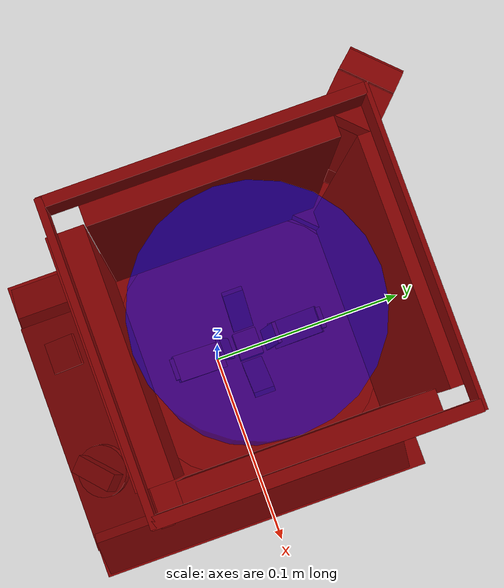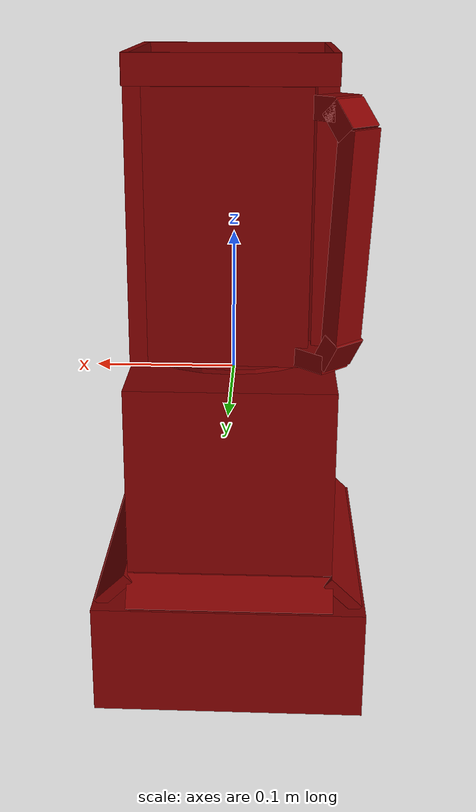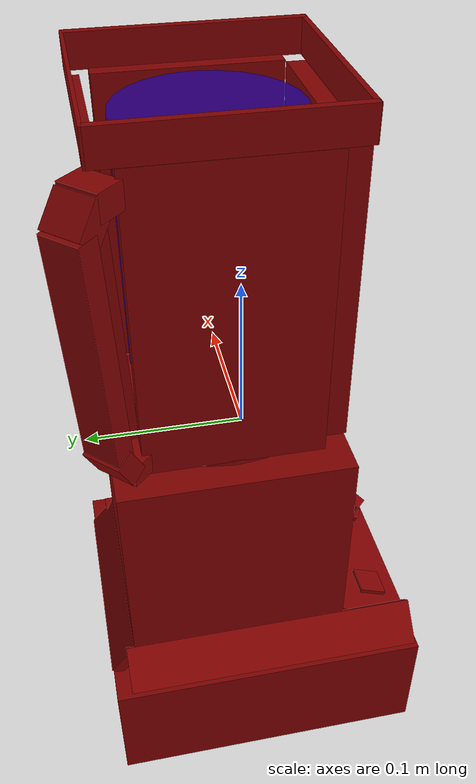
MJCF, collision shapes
<?xml version='1.0' encoding='UTF-8'?>
<mujoco model="model">
  <option timestep="0.002" gravity="0.0 0.0 -9.81"/>
  <compiler angle="radian"/>
  <asset>
    <mesh file="visuals/blade.obj" name="blade_vis"/>
    <mesh file="visuals/Body001.obj" name="Body001_vis"/>
    <mesh file="visuals/knob_speed.obj" name="knob_speed_vis"/>
    <mesh file="visuals/pitcher.obj" name="pitcher_vis"/>
    <mesh file="visuals/pitcher_main.obj" name="pitcher_main_vis"/>
    <mesh file="visuals/power_button.obj" name="power_button_vis"/>
    <texture file="visuals/T_BC001.png" name="Body001_material" type="2d"/>
    <material name="Body001_material" rgba="1 1 1 1.0" texture="Body001_material" shininess="0.7700482308864594" specular="0.9103448502657381"/>
    <texture file="visuals/T_BC001.png" name="knob_speed_material" type="2d"/>
    <material name="knob_speed_material" rgba="1 1 1 1.0" texture="knob_speed_material" shininess="0.7700482308864594" specular="0.9103448502657381"/>
    <texture file="visuals/T_BC001.png" name="pitcher_material" type="2d"/>
    <material name="pitcher_material" rgba="1 1 1 1.0" texture="pitcher_material" shininess="0.7700482308864594" specular="0.9103448502657381"/>
    <texture file="visuals/T_BC001.png" name="blade_material" type="2d"/>
    <material name="blade_material" rgba="1 1 1 1.0" texture="blade_material" shininess="0.7700482308864594" specular="2.3103448502657381"/>
    <texture file="visuals/T_BC001.png" name="pitcher_main_material" type="2d"/>
    <material name="pitcher_main_material" rgba="1 1 1 0.800000011920929" texture="pitcher_main_material" shininess="0.7700482308864594" specular="0.3103448502657381"/>
    <texture file="visuals/T_BC001.png" name="power_button_material" type="2d"/>
    <material name="power_button_material" rgba="1 1 1 1.0" texture="power_button_material" shininess="0.7700482308864594" specular="0.9103448502657381"/>
  </asset>
  <default>
    <default class="visual">
      <geom conaffinity="0" contype="0" group="1" type="mesh"/>
    </default>
    <default class="collision">
      <geom group="0" rgba="0.5 0 0 0.5" density="1000" solref="0.004 1" solimp="0.998 0.998 0.001"/>
    </default>
    <default class="spawn">
      <geom group="0" rgba="1 1 1 0.5" contype="0" conaffinity="0"/>
      <site group="0" rgba="1 1 1 0.5"/>
    </default>
    <default class="region">
      <geom group="1" conaffinity="0" contype="0" rgba="0 1 0 0" mass="0"/>
    </default>
  </default>
  <worldbody>
    <body>
      <body name="object">
        <geom mesh="Body001_vis" type="mesh" solimp="0.998 0.998 0.001" solref="0.001 1" friction="0.95 0.3 0.1" class="visual" material="Body001_material"/>
        <geom type="box" pos="0.00009838 -0.00092468 -0.18583005" size="0.09544695913791656 0.10426949709653854 0.0402303971350193" quat="1.0 0.0 0.0 0.0" class="collision"/>
        <geom type="box" pos="-0.00040561 0.01592932 -0.05616547" size="0.07126396149396896 0.07182466983795166 0.067325659096241" quat="1.0 0.0 0.0 0.0" class="collision"/>
        <geom type="box" pos="-0.07966139 -0.00496216 -0.13631720" size="0.00402027927339077 0.09815406799316406 0.014873117208480835" quat="0.9202430248260498 -2.683670368653561e-16 0.39134737849235535 5.258097957039354e-08" class="collision"/>
        <geom type="box" pos="0.08065451 -0.00496216 -0.13631720" size="0.00402027927339077 0.09815406799316406 0.014873117208480835" quat="0.9202430248260498 -3.5377271248647306e-15 -0.39134737849235535 -5.258097957039354e-08" class="collision"/>
        <geom type="box" pos="-0.00071108 0.09315052 -0.13622937" size="0.00402027927339077 0.07176673412322998 0.01249531377106905" quat="0.6628537774085999 0.24622128903865814 -0.24622133374214172 0.6628536581993103" class="collision"/>
        <geom type="box" pos="0.00512743 -0.07963913 -0.13734331" size="0.003384337294846773 0.07289834320545197 0.026366258040070534" quat="0.5791575908660889 -0.405680388212204 -0.40568044781684875 -0.5791574120521545" class="collision"/>
        <body name="knob_speed">
          <joint axis="0.0 0.3454406261444092 -0.9384405612945557" pos="0.03268874 -0.08703924 -0.12503923" limited="true" name="knob_speed_joint" range="0.0 4.71238898038469" type="hinge" damping="0.05" armature="0.001"/>
          <geom mesh="knob_speed_vis" type="mesh" solimp="0.998 0.998 0.001" solref="0.001 1" friction="0.95 0.3 0.1" class="visual" material="knob_speed_material"/>
          <geom type="cylinder" pos="0.03265166 -0.08532186 -0.12983802" size="0.01615726202726364 0.0025616271886974573" quat="0.9826064705848694 0.18524746596813202 0.004521556198596954 0.012144520878791809" class="collision"/>
          <geom class="collision" type="box" pos="0.03301833 -0.08862654 -0.12156287" size="0.013275418430566788 0.005633893422782421 0.006007363088428974" quat="0.9084489941596985 0.14288212358951569 -0.1322166621685028 0.3698970377445221" name="knob_speed_main"/>
        </body>
        <body name="pitcher">
          <geom mesh="pitcher_vis" type="mesh" solimp="0.998 0.998 0.001" solref="0.001 1" friction="0.95 0.3 0.1" class="visual" material="pitcher_material"/>
          <geom class="collision" type="box" pos="-0.07478996 0.09117244 0.11543127" size="0.011951700784265995 0.006453691981732845 0.06791377812623978" quat="0.9231506586074829 -0.029291750863194466 -0.012156728655099869 0.38312798738479614" name="pitcher_handle_1"/>
          <geom class="collision" type="box" pos="-0.06497423 0.08159496 0.19390878" size="0.011959709227085114 0.00865696556866169 0.007378702983260155" quat="0.9236152768135071 0.0 0.0 0.38332080841064453" name="pitcher_handle_2"/>
          <geom class="collision" type="box" pos="-0.05845841 0.07435066 0.03288266" size="0.012522098608314991 0.01429979968816042 0.006272301077842712" quat="0.9236152768135071 -2.5921023660835374e-10 6.245695627349335e-10 0.3833208382129669" name="pitcher_handle_0"/>
          <geom type="cylinder" pos="0.00034438 0.01651172 0.02433396" size="0.06772742420434952 0.0015224376693367958" quat="1.0 0.0 0.0 0.0" class="collision"/>
          <geom class="collision" type="box" pos="-0.07268012 0.08927961 0.18746170" size="0.011959709227085114 0.010367041453719139 0.00737870205193758" quat="0.8393899202346802 -0.38534361124038696 -0.15992611646652222 0.34836545586586" name="pitcher_handle_3"/>
          <geom class="collision" type="box" pos="-0.06991799 0.08577864 0.04140540" size="0.012522098608314991 0.010928334668278694 0.006272301077842712" quat="0.7978094816207886 0.4653656482696533 0.19313709437847137 0.33110862970352173" name="pitcher_handle_4"/>
          <body name="blade">
            <geom mesh="blade_vis" type="mesh" solimp="0.998 0.998 0.001" solref="0.001 1" friction="0.95 0.3 0.1" class="visual" material="blade_material"/>
            <geom type="box" pos="-0.00000500 0.01627119 0.02811437" size="0.006796702742576599 0.006033340003341436 0.008870548568665981" quat="1.0 0.0 0.0 0.0" class="collision"/>
            <geom type="box" pos="-0.00000500 0.04103009 0.02736291" size="0.006796702742576599 0.014025045558810234 0.0017386107938364148" quat="0.9905418157577515 0.13721105456352234 -3.046707035485529e-17 2.4156720506807417e-25" class="collision"/>
            <geom type="box" pos="-0.00005982 0.02464923 0.02395237" size="0.006735978182405233 0.0023647986818104982 0.0017699705203995109" quat="1.0 0.0 0.0 0.0" class="collision"/>
            <geom type="box" pos="-0.00001141 0.05511524 0.03530011" size="0.005444969050586224 0.001163806882686913 0.002927056048065424" quat="1.0 0.0 0.0 0.0" class="collision"/>
            <geom type="box" pos="-0.00001141 -0.02262257 0.03530011" size="0.005444969050586224 0.0011247117072343826 0.0029121816623955965" quat="0.9999773502349854 -0.006730015389621258 -1.4943602996053826e-18 1.4482614528557508e-24" class="collision"/>
            <geom type="box" pos="-0.00005982 0.00784345 0.02395237" size="0.006735978182405233 0.0023416096810251474 0.0017386107938364148" quat="0.9999773502349854 -0.006730015389621258 -1.4943602996053826e-18 1.4482614528557508e-24" class="collision"/>
            <geom type="box" pos="-0.00000500 -0.00853742 0.02736291" size="0.006796702742576599 0.014025045558810234 0.0017386107938364148" quat="0.9905418157577515 -0.13721105456352234 -3.046707035485529e-17 -1.4706026839449019e-24" class="collision"/>
            <geom type="box" pos="-0.01777174 0.01702153 0.03881373" size="0.0015928685897961259 0.005283007398247719 0.012411748059093952" quat="0.9287297129631042 -5.471797459577488e-10 -0.370757520198822 -4.8397581053905014e-08" class="collision"/>
            <geom type="box" pos="0.01749905 0.01553993 0.03881373" size="0.0015928685897961259 0.005283007398247719 0.012411748059093952" quat="0.9287297129631042 -5.472046704646516e-10 0.37075746059417725 4.839776579501631e-08" class="collision"/>
            <geom type="box" pos="-0.00088261 0.00442632 0.04322277" size="0.0009584952495060861 0.005283007398247719 0.012411748059093952" quat="0.703269898891449 0.07356300204992294 0.07356306165456772 -0.7032698392868042" class="collision"/>
            <geom type="box" pos="0.00083358 0.02796458 0.04322277" size="0.0009584952495060861 0.005283007398247719 0.012411748059093952" quat="0.703269898891449 -0.07356300950050354 0.07356306165456772 0.7032698392868042" class="collision"/>
          </body>
          <body name="pitcher_main">
            <geom class="region" type="cylinder" size="0.051534075289964676 0.07440784573554993" pos="-0.00000500 0.01629260 0.13026517" rgba="0 0 1 0.5" name="reg_int"/>
            <geom mesh="pitcher_main_vis" type="mesh" solimp="0.998 0.998 0.001" solref="0.001 1" friction="0.95 0.3 0.1" class="visual" material="pitcher_main_material"/>
            <geom type="box" pos="0.00162357 0.07611021 0.11571105" size="0.05276477709412575 0.003327916609123349 0.09030888229608536" quat="0.9997986555099487 -0.020065851509571075 0.0 0.0" class="collision"/>
            <geom type="box" pos="-0.00154144 -0.04420170 0.11504211" size="0.05276710167527199 0.00800911895930767 0.09103607386350632" quat="1.0 0.0 0.0 0.0" class="collision"/>
            <geom type="box" pos="-0.05997258 0.01734943 0.11564595" size="0.006826202385127544 0.05306067690253258 0.09043478965759277" quat="1.0 0.0 0.0 0.0" class="collision"/>
            <geom type="box" pos="0.05966715 0.01735006 0.11570717" size="0.007471128832548857 0.053433459252119064 0.09090543538331985" quat="1.0 0.0 0.0 0.0" class="collision"/>
            <geom type="box" pos="0.06388546 0.01642815 0.21585156" size="0.002611522562801838 0.06615706533193588 0.009743143804371357" quat="1.0 0.0 0.0 0.0" class="collision"/>
            <geom type="box" pos="-0.06417845 0.01642815 0.21585156" size="0.0023299800232052803 0.06615706533193588 0.009743143804371357" quat="1.0 0.0 0.0 0.0" class="collision"/>
            <geom type="box" pos="-0.00007778 0.08290062 0.21585156" size="0.06615706533193588 0.0009990411344915628 0.009743143804371357" quat="1.0 0.0 0.0 0.0" class="collision"/>
            <geom type="box" pos="-0.00007778 -0.04868844 0.21585156" size="0.06615706533193588 0.0015682568773627281 0.009743143804371357" quat="1.0 0.0 0.0 0.0" class="collision"/>
          </body>
        </body>
        <body name="power_button">
          <joint axis="0.0 0.3528802990913391 -0.9356685280799866" pos="-0.04315654 -0.08408132 -0.13286445" limited="true" name="power_button_joint" range="0.0 0.003" type="slide" damping="1" frictionloss="1" armature=".01" stiffness="0.3" springref="-0.3"/>
          <geom mesh="power_button_vis" type="mesh" solimp="0.998 0.998 0.001" solref="0.001 1" friction="0.95 0.3 0.1" class="visual" material="power_button_material"/>
          <geom class="collision" type="box" pos="-0.04316494 -0.08455940 -0.13226021" size="0.00983891449868679 0.00983891449868679 0.0014325517695397139" quat="0.9826168417930603 0.18564507365226746 -4.122158629706957e-17 9.167773042435861e-24" name="power_button_main"/>
        </body>
        <geom class="region" name="reg_main" type="box" pos="2.0500000000311935e-07 -0.0012478849999999972 -3.1000000000336314e-07" size="0.096558955 0.104140875 0.22661106"/>
      </body>
      <site rgba="0 1 0 0" size="0.001" pos="-0.000 0.01577748 0.230226" name="anchor_site"/>
    </body>
  </worldbody>
  <actuator>
    <motor name="knob_speed_joint_actuator" joint="knob_speed_joint" gear="10"/>
<motor name="power_button_joint_actuator" joint="power_button_joint" gear="0.5"/>
  </actuator>
</mujoco>
